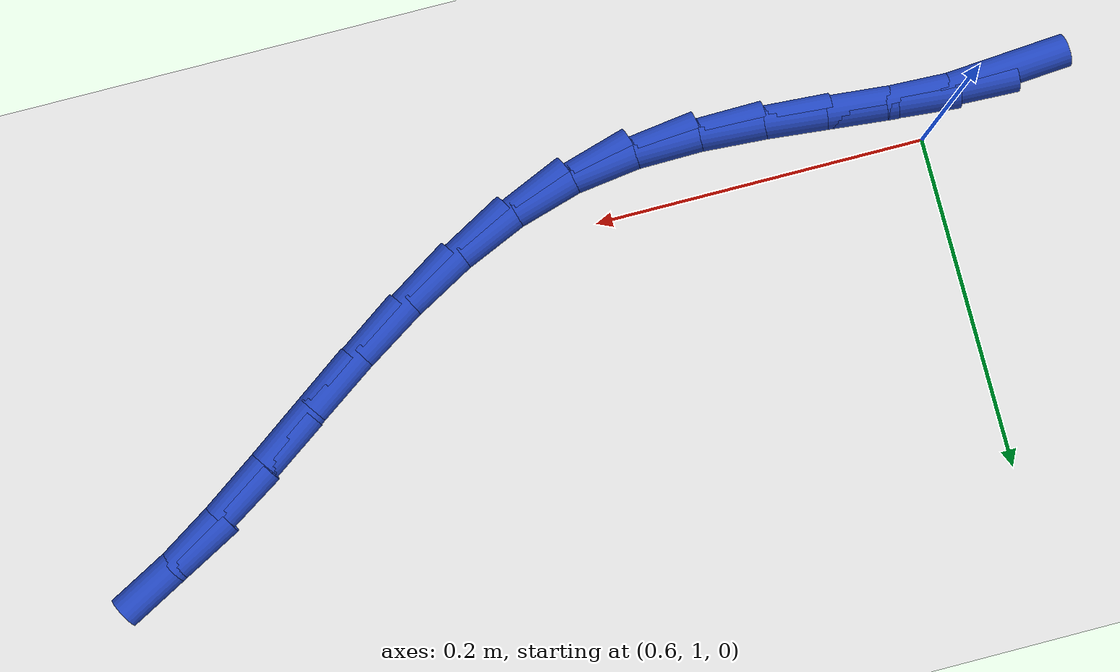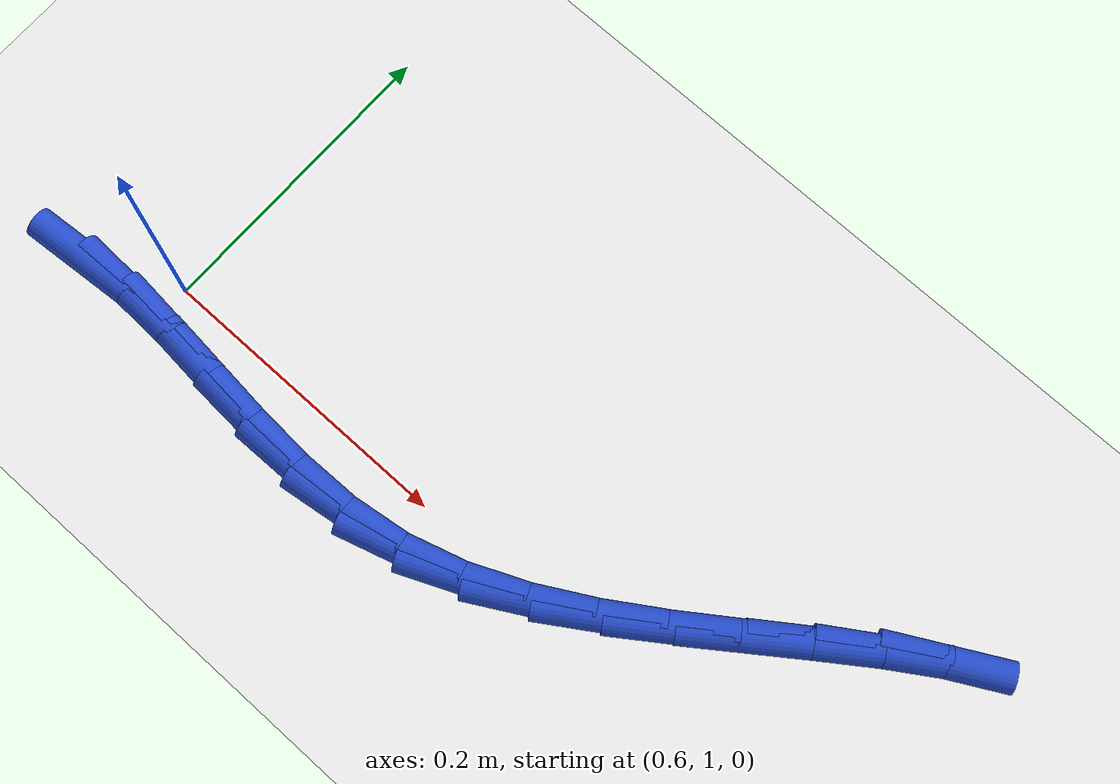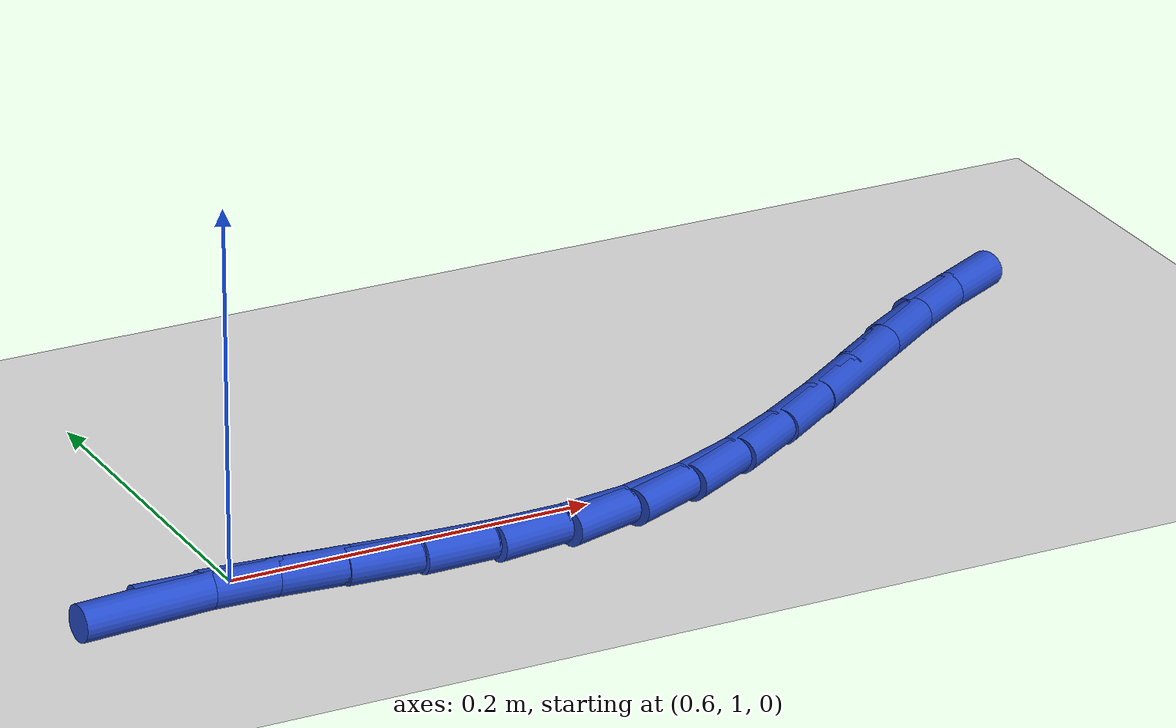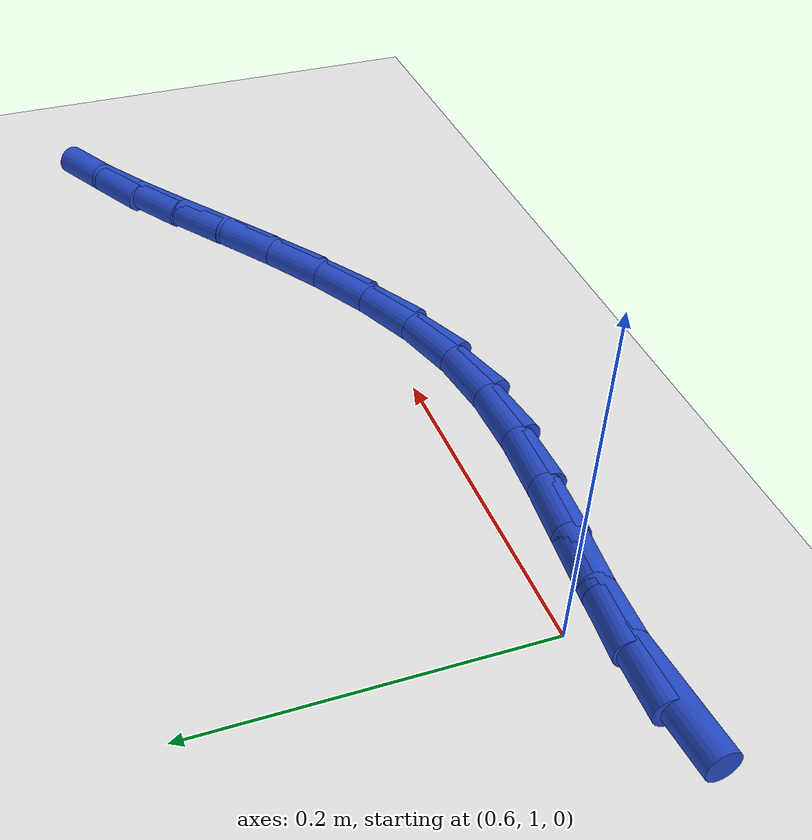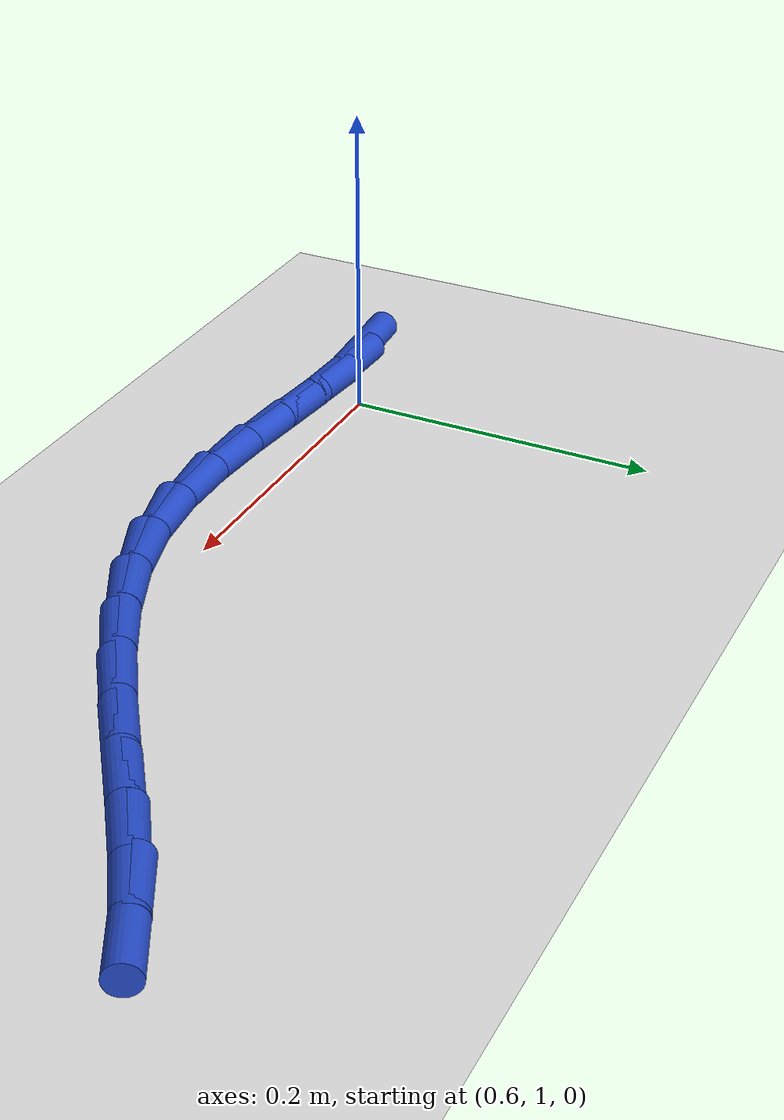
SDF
<sdf version="1.6">
 <world name="default">
  <model name="ground_plane">
   <static>1</static>
   <link name="link">
    <collision name="collision">
     <geometry><plane><normal>0 0 1</normal><size>100 100</size></plane></geometry>
     <surface><friction><ode><mu>100</mu><mu2>50</mu2></ode></friction></surface>
    </collision>
    <visual name="visual">
     <cast_shadows>0</cast_shadows>
     <geometry><plane><normal>0 0 1</normal><size>100 100</size></plane></geometry>
     <material>
      <script><uri>file://media/materials/scripts/gazebo.material</uri><name>Gazebo/WhiteGlow</name></script>
     </material>
    </visual>
   </link>
  </model>
  <model name="line">
   <link name="link_32">
    <pose>0.5450453296759695 0.9735847828545054 0.01 0 1.57 0.07837363461780061</pose>
    <collision name="collision">
     <geometry><cylinder><radius>0.01</radius><length>0.08</length></cylinder></geometry>
    </collision>
    <visual name="visual">
     <material>
      <script><name>Gazebo/Blue</name><uri>file://media/materials/scripts/gazebo.material</uri></script>
     </material>
     <geometry><cylinder><radius>0.01</radius><length>0.08</length></cylinder></geometry>
    </visual>
   </link>
   <link name="link_33">
    <pose>0.5778478761160633 0.9761609143711619 0.01 0 1.57 -0.03528871126451567</pose>
    <collision name="collision">
     <geometry><cylinder><radius>0.01</radius><length>0.08</length></cylinder></geometry>
    </collision>
    <visual name="visual">
     <material>
      <script><name>Gazebo/Blue</name><uri>file://media/materials/scripts/gazebo.material</uri></script>
     </material>
     <geometry><cylinder><radius>0.01</radius><length>0.08</length></cylinder></geometry>
    </visual>
   </link>
   <link name="link_34">
    <pose>0.6131420147980261 0.9749149124463896 0.01 0 1.57 -0.08982345356024937</pose>
    <collision name="collision">
     <geometry><cylinder><radius>0.01</radius><length>0.08</length></cylinder></geometry>
    </collision>
    <visual name="visual">
     <material>
      <script><name>Gazebo/Blue</name><uri>file://media/materials/scripts/gazebo.material</uri></script>
     </material>
     <geometry><cylinder><radius>0.01</radius><length>0.08</length></cylinder></geometry>
    </visual>
   </link>
   <link name="link_35">
    <pose>0.6503621186306352 0.9715626537015101 0.01 0 1.57 -0.09670611162263286</pose>
    <collision name="collision">
     <geometry><cylinder><radius>0.01</radius><length>0.08</length></cylinder></geometry>
    </collision>
    <visual name="visual">
     <material>
      <script><name>Gazebo/Blue</name><uri>file://media/materials/scripts/gazebo.material</uri></script>
     </material>
     <geometry><cylinder><radius>0.01</radius><length>0.08</length></cylinder></geometry>
    </visual>
   </link>
   <link name="link_36">
    <pose>0.6889425605226688 0.9678200147578444 0.01 0 1.57 -0.06131057070642005</pose>
    <collision name="collision">
     <geometry><cylinder><radius>0.01</radius><length>0.08</length></cylinder></geometry>
    </collision>
    <visual name="visual">
     <material>
      <script><name>Gazebo/Blue</name><uri>file://media/materials/scripts/gazebo.material</uri></script>
     </material>
     <geometry><cylinder><radius>0.01</radius><length>0.08</length></cylinder></geometry>
    </visual>
   </link>
   <link name="link_37">
    <pose>0.7283177133829041 0.9654028722367138 0.01 0 1.57 0.015760405678927884</pose>
    <collision name="collision">
     <geometry><cylinder><radius>0.01</radius><length>0.08</length></cylinder></geometry>
    </collision>
    <visual name="visual">
     <material>
      <script><name>Gazebo/Blue</name><uri>file://media/materials/scripts/gazebo.material</uri></script>
     </material>
     <geometry><cylinder><radius>0.01</radius><length>0.08</length></cylinder></geometry>
    </visual>
   </link>
   <link name="link_38">
    <pose>0.7679219501201188 0.9660271027594396 0.01 0 1.57 0.1361975559223388</pose>
    <collision name="collision">
     <geometry><cylinder><radius>0.01</radius><length>0.08</length></cylinder></geometry>
    </collision>
    <visual name="visual">
     <material>
      <script><name>Gazebo/Blue</name><uri>file://media/materials/scripts/gazebo.material</uri></script>
     </material>
     <geometry><cylinder><radius>0.01</radius><length>0.08</length></cylinder></geometry>
    </visual>
   </link>
   <link name="link_39">
    <pose>0.8071896436430905 0.9714085829473431 0.01 0 1.57 0.28709054770283937</pose>
    <collision name="collision">
     <geometry><cylinder><radius>0.01</radius><length>0.08</length></cylinder></geometry>
    </collision>
    <visual name="visual">
     <material>
      <script><name>Gazebo/Blue</name><uri>file://media/materials/scripts/gazebo.material</uri></script>
     </material>
     <geometry><cylinder><radius>0.01</radius><length>0.08</length></cylinder></geometry>
    </visual>
   </link>
   <link name="link_40">
    <pose>0.8456419973119377 0.9827615244980525 0.01 0 1.57 0.41489379603729176</pose>
    <collision name="collision">
     <geometry><cylinder><radius>0.01</radius><length>0.08</length></cylinder></geometry>
    </collision>
    <visual name="visual">
     <material>
      <script><name>Gazebo/Blue</name><uri>file://media/materials/scripts/gazebo.material</uri></script>
     </material>
     <geometry><cylinder><radius>0.01</radius><length>0.08</length></cylinder></geometry>
    </visual>
   </link>
   <link name="link_41">
    <pose>0.8831494973217845 0.9992821495206946 0.01 0 1.57 0.5089331013523337</pose>
    <collision name="collision">
     <geometry><cylinder><radius>0.01</radius><length>0.08</length></cylinder></geometry>
    </collision>
    <visual name="visual">
     <material>
      <script><name>Gazebo/Blue</name><uri>file://media/materials/scripts/gazebo.material</uri></script>
     </material>
     <geometry><cylinder><radius>0.01</radius><length>0.08</length></cylinder></geometry>
    </visual>
   </link>
   <link name="link_42">
    <pose>0.9196704435988041 1.0196593342796434 0.01 0 1.57 0.5734456332069271</pose>
    <collision name="collision">
     <geometry><cylinder><radius>0.01</radius><length>0.08</length></cylinder></geometry>
    </collision>
    <visual name="visual">
     <material>
      <script><name>Gazebo/Blue</name><uri>file://media/materials/scripts/gazebo.material</uri></script>
     </material>
     <geometry><cylinder><radius>0.01</radius><length>0.08</length></cylinder></geometry>
    </visual>
   </link>
   <link name="link_43">
    <pose>0.9551631360697463 1.0425819550359392 0.01 0 1.57 0.6119146043895051</pose>
    <collision name="collision">
     <geometry><cylinder><radius>0.01</radius><length>0.08</length></cylinder></geometry>
    </collision>
    <visual name="visual">
     <material>
      <script><name>Gazebo/Blue</name><uri>file://media/materials/scripts/gazebo.material</uri></script>
     </material>
     <geometry><cylinder><radius>0.01</radius><length>0.08</length></cylinder></geometry>
    </visual>
   </link>
   <link name="link_44">
    <pose>0.9895858746613619 1.0667388880506217 0.01 0 1.57 0.6259212328232577</pose>
    <collision name="collision">
     <geometry><cylinder><radius>0.01</radius><length>0.08</length></cylinder></geometry>
    </collision>
    <visual name="visual">
     <material>
      <script><name>Gazebo/Blue</name><uri>file://media/materials/scripts/gazebo.material</uri></script>
     </material>
     <geometry><cylinder><radius>0.01</radius><length>0.08</length></cylinder></geometry>
    </visual>
   </link>
   <link name="link_45">
    <pose>1.0228969593004011 1.0908190095847305 0.01 0 1.57 0.6145095918454402</pose>
    <collision name="collision">
     <geometry><cylinder><radius>0.01</radius><length>0.08</length></cylinder></geometry>
    </collision>
    <visual name="visual">
     <material>
      <script><name>Gazebo/Blue</name><uri>file://media/materials/scripts/gazebo.material</uri></script>
     </material>
     <geometry><cylinder><radius>0.01</radius><length>0.08</length></cylinder></geometry>
    </visual>
   </link>
   <link name="link_46">
    <pose>1.0550546899136135 1.1135111958993054 0.01 0 1.57 0.573358446752258</pose>
    <collision name="collision">
     <geometry><cylinder><radius>0.01</radius><length>0.08</length></cylinder></geometry>
    </collision>
    <visual name="visual">
     <material>
      <script><name>Gazebo/Blue</name><uri>file://media/materials/scripts/gazebo.material</uri></script>
     </material>
     <geometry><cylinder><radius>0.01</radius><length>0.08</length></cylinder></geometry>
    </visual>
   </link>
   <link name="link_47">
    <pose>1.086017366427749 1.1335043232553859 0.01 0 1.57 0.4933329701970258</pose>
    <collision name="collision">
     <geometry><cylinder><radius>0.01</radius><length>0.08</length></cylinder></geometry>
    </collision>
    <visual name="visual">
     <material>
      <script><name>Gazebo/Blue</name><uri>file://media/materials/scripts/gazebo.material</uri></script>
     </material>
     <geometry><cylinder><radius>0.01</radius><length>0.08</length></cylinder></geometry>
    </visual>
   </link>
  </model>
 </world>
</sdf>
